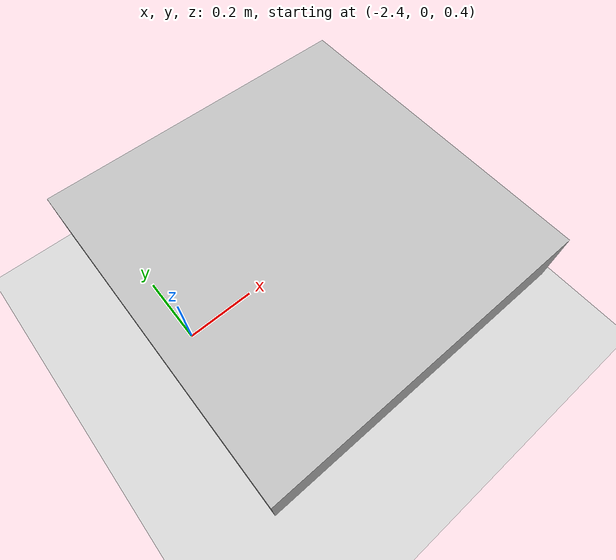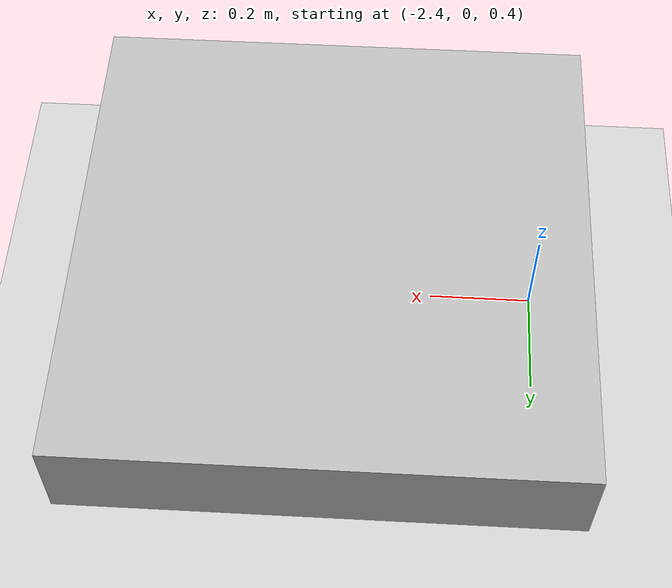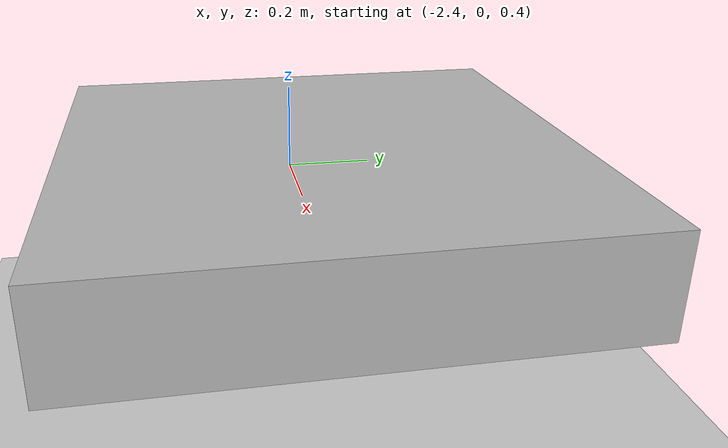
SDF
<?xml version="1.0" ?>
<sdf version="1.8">
    <world name="ycafj">
    <magnetic_field>6.0e-06 2.3e-05 -4.2e-05</magnetic_field>
    <spherical_coordinates>
      <surface_model>EARTH_WGS84</surface_model>
      <world_frame_orientation>ENU</world_frame_orientation>
      <latitude_deg>47.397742</latitude_deg>
      <longitude_deg>8.545594</longitude_deg>
      <elevation>488.0</elevation>
      <heading_deg>0</heading_deg>
    </spherical_coordinates>
        <physics name="1ms" type="ignored">
            <max_step_size>0.001</max_step_size>
            <real_time_factor>1.0</real_time_factor>
        </physics>
        <plugin
            filename="gz-sim-physics-system"
            name="gz::sim::systems::Physics">
        </plugin>
        <plugin
            filename="gz-sim-user-commands-system"
            name="gz::sim::systems::UserCommands">
        </plugin>
        <plugin
            filename="gz-sim-scene-broadcaster-system"
            name="gz::sim::systems::SceneBroadcaster">
        </plugin>
        <plugin filename="gz-sim-sensors-system" name="gz::sim::systems::Sensors">
            <render_engine>ogre2</render_engine>
        </plugin>
        <plugin filename="gz-sim-imu-system" name="gz::sim::systems::Imu" />
        <plugin filename="gz-sim-navsat-system" name="gz::sim::systems::NavSat" />
        <light type="directional" name="sun">
            <cast_shadows>true</cast_shadows>
            <pose>0 0 10 0 0 0</pose>
            <diffuse>0.8 0.8 0.8 1</diffuse>
            <specular>0.2 0.2 0.2 1</specular>
            <attenuation>
                <range>1000</range>
                <constant>0.9</constant>
                <linear>0.01</linear>
                <quadratic>0.001</quadratic>
            </attenuation>
            <direction>-0.5 0.1 -0.9</direction>
        </light>

        <model name="ground_plane">
            <static>true</static>
            <link name="link">
                <collision name="collision">
                <geometry>
                    <plane>
                    <normal>0 0 1</normal>
                    </plane>
                </geometry>
                </collision>
                <visual name="visual">
                <geometry>
                    <plane>
                    <normal>0 0 1</normal>
                    <size>100 100</size>
                    </plane>
                </geometry>
                <material>
                    <ambient>0.8 0.8 0.8 1</ambient>
                    <diffuse>0.8 0.8 0.8 1</diffuse>
                    <specular>0.8 0.8 0.8 1</specular>
                </material>
                </visual>
            </link>
        </model>
        <model name="plate">
            <kinematic>true</kinematic>
            <pose>-2 0 0.5 0 0 0</pose>
            <link name="link">
                <gravity>false</gravity>
                <pose>0 0 0 0 0 0</pose>
                <inertial>
                    <inertia>
                        <ixx>16.83</ixx>
                        <iyy>16.83</iyy>
                        <izz>33.33</izz>
                        <ixy>0.0</ixy>
                        <ixz>0.0</ixz>
                        <iyz>0.0</iyz>
                    </inertia>
                    <mass>50.0</mass>
                </inertial>

                <collision name="my_collision">
                    <geometry>
                        <box>
                            <size> 1.0 1.0 0.2</size>
                        </box>
                    </geometry>
                </collision>

                <visual name="my_visual">
                    <geometry>
                        <box>
                            <size> 1.0 1.0 0.2 </size>
                        </box>
                    </geometry>
                </visual>
            </link>
            <plugin
                filename="gz-sim-odometry-publisher-system"
                name="gz::sim::systems::OdometryPublisher">
                <odom_frame>world</odom_frame>
                <robot_base_frame>link</robot_base_frame>
                <odom_topic>/model/plate/odometry</odom_topic>
                <odom_publish_frequency>50</odom_publish_frequency>
            </plugin>
            <plugin filename="gz-sim-velocity-control-system" name="gz::sim::systems::VelocityControl">
                <link_name>link</link_name>
            </plugin>
        </model>
    </world>
</sdf>
